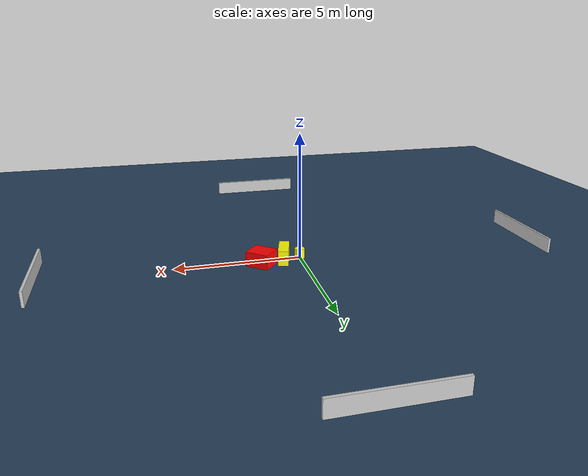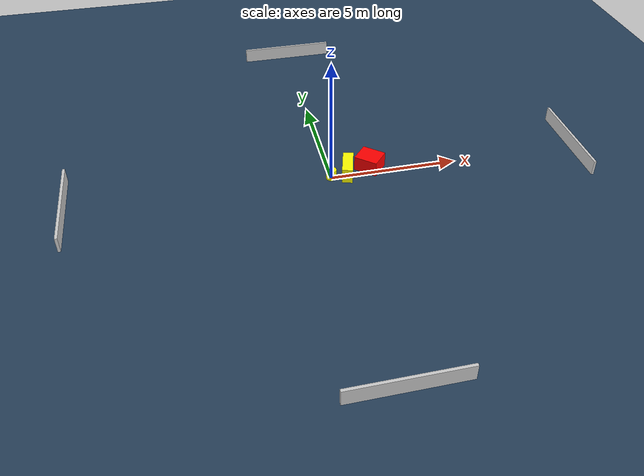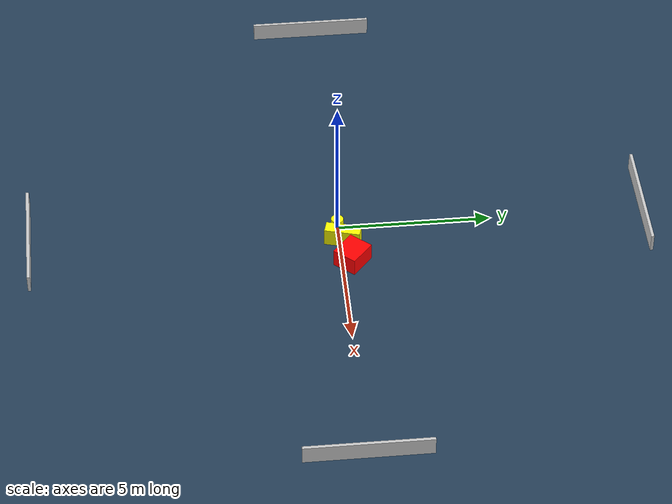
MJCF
<?xml version="1.0" ?>
<mujoco model="generated_environment">
  <option timestep="0.01" integrator="RK4" cone="elliptic"/>
  <default>
    <geom density="1"/>
  </default>
  <asset>
    <texture builtin="gradient" height="3072" name="skybox" rgb1="0.3 0.5 0.7" rgb2="0 0 0" type="skybox" width="512"/>
    <texture builtin="checker" height="300" name="groundplane" rgb1="0.2 0.3 0.4" rgb2="0.1 0.2 0.3" type="2d" width="300"/>
    <material name="groundplane" reflectance="0.2" texrepeat="5 5" texture="groundplane"/>
  </asset>
  <worldbody>
    <light dir="0 0 -1" directional="true" pos="0 0 1.5"/>
    <geom condim="3" friction="0.5 0.005 0.001" material="groundplane" name="floor" pos="0 0 0" size="0 0 0.05" type="plane"/>
    <body name="walls">
      <geom name="wall_1" condim="4" pos="-10.0 0.0 0.3" rgba="0.800000011920929 0.800000011920929 0.800000011920929 1.0" size="0.05 2.0 0.3" type="box"/>
      <geom name="wall_2" condim="4" pos="10.0 0.0 0.3" rgba="0.800000011920929 0.800000011920929 0.800000011920929 1.0" size="0.05 2.0 0.3" type="box"/>
      <geom name="wall_3" condim="4" pos="0.0 -10.0 0.3" rgba="0.800000011920929 0.800000011920929 0.800000011920929 1.0" size="2.0 0.05 0.3" type="box"/>
      <geom name="wall_4" condim="4" pos="0.0 10.0 0.3" rgba="0.800000011920929 0.800000011920929 0.800000011920929 1.0" size="2.0 0.05 0.3" type="box"/>
    </body>
    <body name="robot">
      <joint name="joint_x" type="slide" pos="0 0 0" axis="1 0 0"/>
      <joint name="joint_y" type="slide" pos="0 0 0" axis="0 1 0"/>
      <geom name="robot" type="cylinder" pos="0.0 0.0 0.2" size="0.2 0.2 0.0" mass="5.0" friction="1.0 0.005 0.0001" condim="4" rgba="1.0 1.0 0.0 1.0"/>
    </body>
    <body name="obstacle_1_movable">
      <geom name="obstacle_1_movable" condim="4" pos="0.6831760031346219 0.12090497888033636 0.3" euler="0 0 164.91174307409875" friction="0.0 0.005 0.001" rgba="1.0 1.0 0.0 1.0" size="0.20377838099263942 0.5763653827250201 0.3" type="box" mass="0.1"/>
      <joint type="free"/>
    </body>
    <body name="obstacle_2_static">
      <geom name="obstacle_2_static" condim="4" pos="1.620453296713046 0.33738412115870736 0.3" euler="0 0 319.47156310212966" friction="0.0 0.005 0.001" rgba="1.0 0.0 0.0 1.0" size="0.46897994919712505 0.41329693579215593 0.3" type="box"/>
    </body>
  </worldbody>
  <actuator>
    <motor name="actuator_x" joint="joint_x" gear="1" ctrlrange="-1 1"/>
    <motor name="actuator_y" joint="joint_y" gear="1" ctrlrange="-1 1"/>
  </actuator>
</mujoco>
